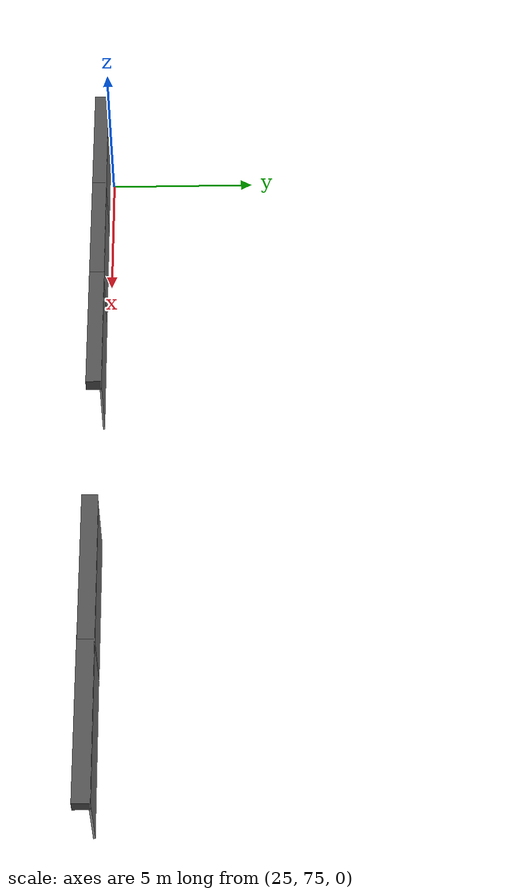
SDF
<sdf version="1.7">
 <world name="factory_ground">
  <model name="garage_door">
   <link name="link">
    <visual name="visual">
     <geometry><box><size>0.05 4 2</size></box></geometry>
     <material>
      <script>
       <uri>https://fuel.ignitionrobotics.org/1.0/ledsantos/models/garage_door/1/files/material/script</uri>
       <uri>https://fuel.ignitionrobotics.org/1.0/ledsantos/models/garage_door/1/files/material/textures</uri>
       <name>Custom/garage_door_metal</name>
      </script>
     </material>
    </visual>
   </link>
   <link name="link_0">
    <inertial>
     <mass>0.631708</mass>
     <inertia>
      <ixx>0.913425</ixx>
      <ixy>0</ixy>
      <ixz>0</ixz>
      <iyy>0.0161823</iyy>
      <iyz>0</iyz>
      <izz>0.915671</izz>
     </inertia>
    </inertial>
    <pose>0.186516 0 1.12272 0 -0 0</pose>
    <visual name="visual">
     <geometry><box><size>0.418365 4.1496 0.363828</size></box></geometry>
     <material>
      <lighting>1</lighting>
      <script><uri>file://media/materials/scripts/gazebo.material</uri><name>Gazebo/DarkGrey</name></script>
     </material>
    </visual>
    <collision name="collision">
     <geometry><box><size>0.418365 4.15 0.363828</size></box></geometry>
     <surface>
      <friction>
       <ode><mu>1</mu><mu2>1</mu2><fdir1>0 0 0</fdir1><slip1>0</slip1><slip2>0</slip2></ode>
       <torsional>
        <coefficient>1</coefficient>
        <patch_radius>0</patch_radius>
        <surface_radius>0</surface_radius>
        <use_patch_radius>1</use_patch_radius>
        <ode><slip>0</slip></ode>
       </torsional>
      </friction>
      <bounce><restitution_coefficient>0</restitution_coefficient><threshold>1e+06</threshold></bounce>
      <contact>
       <collide_without_contact>0</collide_without_contact>
       <collide_without_contact_bitmask>1</collide_without_contact_bitmask>
       <collide_bitmask>1</collide_bitmask>
       <ode>
        <soft_cfm>0</soft_cfm>
        <soft_erp>0.2</soft_erp>
        <kp>1e+13</kp>
        <kd>1</kd>
        <max_vel>0.01</max_vel>
        <min_depth>0</min_depth>
       </ode>
       <bullet>
        <split_impulse>1</split_impulse>
        <split_impulse_penetration_threshold>-0.01</split_impulse_penetration_threshold>
        <soft_cfm>0</soft_cfm>
        <soft_erp>0.2</soft_erp>
        <kp>1e+13</kp>
        <kd>1</kd>
       </bullet>
      </contact>
     </surface>
    </collision>
   </link>
   <static>1</static>
   <pose>43.9579 75.0046 3.69084 0 0 -1.5708</pose>
  </model>
  <model name="garage_door_clone">
   <link name="link">
    <visual name="visual">
     <geometry><box><size>0.05 4 2</size></box></geometry>
     <material>
      <script>
       <uri>https://fuel.ignitionrobotics.org/1.0/ledsantos/models/garage_door/1/files/material/script</uri>
       <uri>https://fuel.ignitionrobotics.org/1.0/ledsantos/models/garage_door/1/files/material/textures</uri>
       <name>Custom/garage_door_metal</name>
      </script>
     </material>
    </visual>
   </link>
   <link name="link_0">
    <inertial>
     <mass>0.631708</mass>
     <inertia>
      <ixx>0.913425</ixx>
      <ixy>0</ixy>
      <ixz>0</ixz>
      <iyy>0.0161823</iyy>
      <iyz>0</iyz>
      <izz>0.915671</izz>
     </inertia>
    </inertial>
    <pose>0.186516 0 1.12272 0 -0 0</pose>
    <visual name="visual">
     <geometry><box><size>0.418365 4.1496 0.363828</size></box></geometry>
     <material>
      <lighting>1</lighting>
      <script><uri>file://media/materials/scripts/gazebo.material</uri><name>Gazebo/DarkGrey</name></script>
     </material>
    </visual>
    <collision name="collision">
     <geometry><box><size>0.418365 4.15 0.363828</size></box></geometry>
     <surface>
      <friction>
       <ode><mu>1</mu><mu2>1</mu2><fdir1>0 0 0</fdir1><slip1>0</slip1><slip2>0</slip2></ode>
       <torsional>
        <coefficient>1</coefficient>
        <patch_radius>0</patch_radius>
        <surface_radius>0</surface_radius>
        <use_patch_radius>1</use_patch_radius>
        <ode><slip>0</slip></ode>
       </torsional>
      </friction>
      <bounce><restitution_coefficient>0</restitution_coefficient><threshold>1e+06</threshold></bounce>
      <contact>
       <collide_without_contact>0</collide_without_contact>
       <collide_without_contact_bitmask>1</collide_without_contact_bitmask>
       <collide_bitmask>1</collide_bitmask>
       <ode>
        <soft_cfm>0</soft_cfm>
        <soft_erp>0.2</soft_erp>
        <kp>1e+13</kp>
        <kd>1</kd>
        <max_vel>0.01</max_vel>
        <min_depth>0</min_depth>
       </ode>
       <bullet>
        <split_impulse>1</split_impulse>
        <split_impulse_penetration_threshold>-0.01</split_impulse_penetration_threshold>
        <soft_cfm>0</soft_cfm>
        <soft_erp>0.2</soft_erp>
        <kp>1e+13</kp>
        <kd>1</kd>
       </bullet>
      </contact>
     </surface>
    </collision>
   </link>
   <static>1</static>
   <pose>48 75 3.69084 0 0 -1.5708</pose>
  </model>
  <model name="garage_door_clone_1">
   <link name="link">
    <visual name="visual">
     <geometry><box><size>0.05 4 2</size></box></geometry>
     <material>
      <script>
       <uri>https://fuel.ignitionrobotics.org/1.0/ledsantos/models/garage_door/1/files/material/script</uri>
       <uri>https://fuel.ignitionrobotics.org/1.0/ledsantos/models/garage_door/1/files/material/textures</uri>
       <name>Custom/garage_door_metal</name>
      </script>
     </material>
    </visual>
   </link>
   <link name="link_0">
    <inertial>
     <mass>0.631708</mass>
     <inertia>
      <ixx>0.913425</ixx>
      <ixy>0</ixy>
      <ixz>0</ixz>
      <iyy>0.0161823</iyy>
      <iyz>0</iyz>
      <izz>0.915671</izz>
     </inertia>
    </inertial>
    <pose>0.186516 0 1.12272 0 -0 0</pose>
    <visual name="visual">
     <geometry><box><size>0.418365 4.1496 0.363828</size></box></geometry>
     <material>
      <lighting>1</lighting>
      <script><uri>file://media/materials/scripts/gazebo.material</uri><name>Gazebo/DarkGrey</name></script>
     </material>
    </visual>
    <collision name="collision">
     <geometry><box><size>0.418365 4.15 0.363828</size></box></geometry>
     <surface>
      <friction>
       <ode><mu>1</mu><mu2>1</mu2><fdir1>0 0 0</fdir1><slip1>0</slip1><slip2>0</slip2></ode>
       <torsional>
        <coefficient>1</coefficient>
        <patch_radius>0</patch_radius>
        <surface_radius>0</surface_radius>
        <use_patch_radius>1</use_patch_radius>
        <ode><slip>0</slip></ode>
       </torsional>
      </friction>
      <bounce><restitution_coefficient>0</restitution_coefficient><threshold>1e+06</threshold></bounce>
      <contact>
       <collide_without_contact>0</collide_without_contact>
       <collide_without_contact_bitmask>1</collide_without_contact_bitmask>
       <collide_bitmask>1</collide_bitmask>
       <ode>
        <soft_cfm>0</soft_cfm>
        <soft_erp>0.2</soft_erp>
        <kp>1e+13</kp>
        <kd>1</kd>
        <max_vel>0.01</max_vel>
        <min_depth>0</min_depth>
       </ode>
       <bullet>
        <split_impulse>1</split_impulse>
        <split_impulse_penetration_threshold>-0.01</split_impulse_penetration_threshold>
        <soft_cfm>0</soft_cfm>
        <soft_erp>0.2</soft_erp>
        <kp>1e+13</kp>
        <kd>1</kd>
       </bullet>
      </contact>
     </surface>
    </collision>
   </link>
   <static>1</static>
   <pose>28 75 3.61146 0 0 -1.5708</pose>
  </model>
  <model name="garage_door_clone_2">
   <link name="link">
    <visual name="visual">
     <geometry><box><size>0.05 4 2</size></box></geometry>
     <material>
      <script>
       <uri>https://fuel.ignitionrobotics.org/1.0/ledsantos/models/garage_door/1/files/material/script</uri>
       <uri>https://fuel.ignitionrobotics.org/1.0/ledsantos/models/garage_door/1/files/material/textures</uri>
       <name>Custom/garage_door_metal</name>
      </script>
     </material>
    </visual>
   </link>
   <link name="link_0">
    <inertial>
     <mass>0.631708</mass>
     <inertia>
      <ixx>0.913425</ixx>
      <ixy>0</ixy>
      <ixz>0</ixz>
      <iyy>0.0161823</iyy>
      <iyz>0</iyz>
      <izz>0.915671</izz>
     </inertia>
    </inertial>
    <pose>0.186516 0 1.12272 0 -0 0</pose>
    <visual name="visual">
     <geometry><box><size>0.418365 4.1496 0.363828</size></box></geometry>
     <material>
      <lighting>1</lighting>
      <script><uri>file://media/materials/scripts/gazebo.material</uri><name>Gazebo/DarkGrey</name></script>
     </material>
    </visual>
    <collision name="collision">
     <geometry><box><size>0.418365 4.15 0.363828</size></box></geometry>
     <surface>
      <friction>
       <ode><mu>1</mu><mu2>1</mu2><fdir1>0 0 0</fdir1><slip1>0</slip1><slip2>0</slip2></ode>
       <torsional>
        <coefficient>1</coefficient>
        <patch_radius>0</patch_radius>
        <surface_radius>0</surface_radius>
        <use_patch_radius>1</use_patch_radius>
        <ode><slip>0</slip></ode>
       </torsional>
      </friction>
      <bounce><restitution_coefficient>0</restitution_coefficient><threshold>1e+06</threshold></bounce>
      <contact>
       <collide_without_contact>0</collide_without_contact>
       <collide_without_contact_bitmask>1</collide_without_contact_bitmask>
       <collide_bitmask>1</collide_bitmask>
       <ode>
        <soft_cfm>0</soft_cfm>
        <soft_erp>0.2</soft_erp>
        <kp>1e+13</kp>
        <kd>1</kd>
        <max_vel>0.01</max_vel>
        <min_depth>0</min_depth>
       </ode>
       <bullet>
        <split_impulse>1</split_impulse>
        <split_impulse_penetration_threshold>-0.01</split_impulse_penetration_threshold>
        <soft_cfm>0</soft_cfm>
        <soft_erp>0.2</soft_erp>
        <kp>1e+13</kp>
        <kd>1</kd>
       </bullet>
      </contact>
     </surface>
    </collision>
   </link>
   <static>1</static>
   <pose>32 75 3.61132 0 0 -1.5708</pose>
  </model>
  <model name="garage_door_clone_3">
   <link name="link">
    <visual name="visual">
     <geometry><box><size>0.05 4 2</size></box></geometry>
     <material>
      <script>
       <uri>https://fuel.ignitionrobotics.org/1.0/ledsantos/models/garage_door/1/files/material/script</uri>
       <uri>https://fuel.ignitionrobotics.org/1.0/ledsantos/models/garage_door/1/files/material/textures</uri>
       <name>Custom/garage_door_metal</name>
      </script>
     </material>
    </visual>
   </link>
   <link name="link_0">
    <inertial>
     <mass>0.631708</mass>
     <inertia>
      <ixx>0.913425</ixx>
      <ixy>0</ixy>
      <ixz>0</ixz>
      <iyy>0.0161823</iyy>
      <iyz>0</iyz>
      <izz>0.915671</izz>
     </inertia>
    </inertial>
    <pose>0.186516 0 1.12272 0 -0 0</pose>
    <visual name="visual">
     <geometry><box><size>0.418365 4.1496 0.363828</size></box></geometry>
     <material>
      <lighting>1</lighting>
      <script><uri>file://media/materials/scripts/gazebo.material</uri><name>Gazebo/DarkGrey</name></script>
     </material>
    </visual>
    <collision name="collision">
     <geometry><box><size>0.418365 4.15 0.363828</size></box></geometry>
     <surface>
      <friction>
       <ode><mu>1</mu><mu2>1</mu2><fdir1>0 0 0</fdir1><slip1>0</slip1><slip2>0</slip2></ode>
       <torsional>
        <coefficient>1</coefficient>
        <patch_radius>0</patch_radius>
        <surface_radius>0</surface_radius>
        <use_patch_radius>1</use_patch_radius>
        <ode><slip>0</slip></ode>
       </torsional>
      </friction>
      <bounce><restitution_coefficient>0</restitution_coefficient><threshold>1e+06</threshold></bounce>
      <contact>
       <collide_without_contact>0</collide_without_contact>
       <collide_without_contact_bitmask>1</collide_without_contact_bitmask>
       <collide_bitmask>1</collide_bitmask>
       <ode>
        <soft_cfm>0</soft_cfm>
        <soft_erp>0.2</soft_erp>
        <kp>1e+13</kp>
        <kd>1</kd>
        <max_vel>0.01</max_vel>
        <min_depth>0</min_depth>
       </ode>
       <bullet>
        <split_impulse>1</split_impulse>
        <split_impulse_penetration_threshold>-0.01</split_impulse_penetration_threshold>
        <soft_cfm>0</soft_cfm>
        <soft_erp>0.2</soft_erp>
        <kp>1e+13</kp>
        <kd>1</kd>
       </bullet>
      </contact>
     </surface>
    </collision>
   </link>
   <static>1</static>
   <pose>36 75 3.61823 0 0 -1.5708</pose>
  </model>
 </world>
</sdf>
